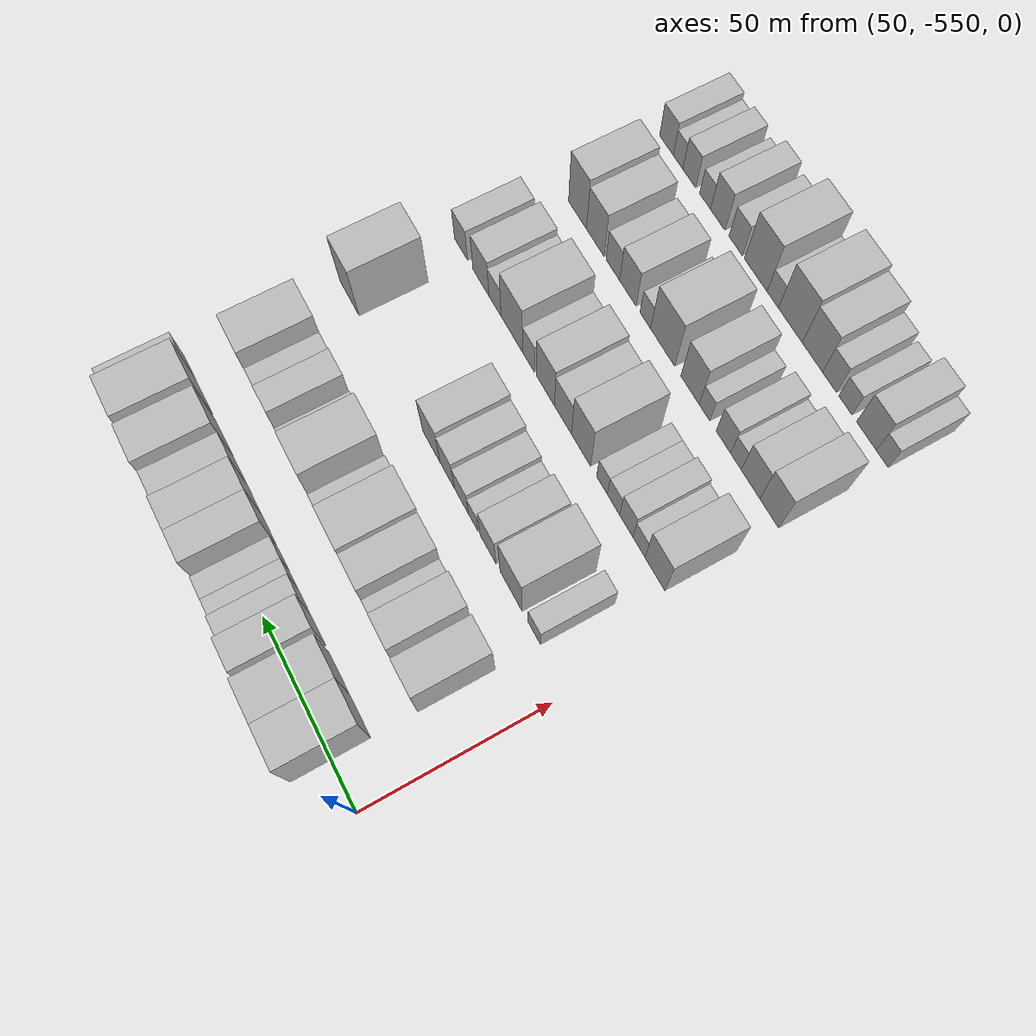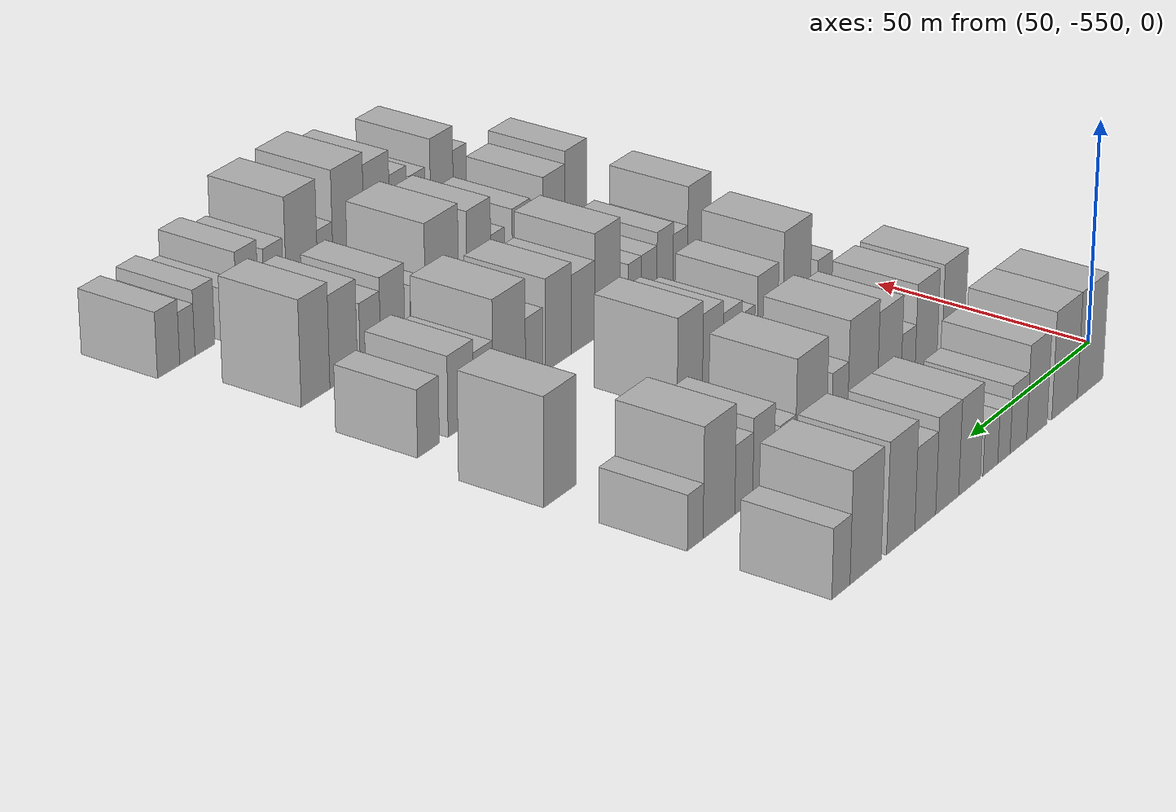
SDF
<sdf version="1.6">
 <world name="default">
  <model name="building_1">
   <static>1</static>
   <pose>50.0000 -531.4744 0 0.000000 0.000000 0.000000</pose>
   <link name="link">
    <pose>0 0 12.00 0 0 0</pose>
    <collision name="collision"><geometry><box><size>20.0000 11.0512 24.0000</size></box></geometry></collision>
    <visual name="visual">
     <cast_shadows>0</cast_shadows>
     <geometry><box><size>20.0000 11.0512 24.0000</size></box></geometry>
     <material>
      <script>
       <uri>model://HANNAS_wall/materials/scripts</uri>
       <uri>model://HANNAS_wall/materials/textures</uri>
       <name>vrc/HANNAS_wall</name>
      </script>
     </material>
    </visual>
   </link>
  </model>
  <model name="building_2">
   <static>1</static>
   <pose>50.0000 -520.5361 0 0.000000 0.000000 0.000000</pose>
   <link name="link">
    <pose>0 0 12.00 0 0 0</pose>
    <collision name="collision"><geometry><box><size>20.0000 10.8253 24.0000</size></box></geometry></collision>
    <visual name="visual">
     <cast_shadows>0</cast_shadows>
     <geometry><box><size>20.0000 10.8253 24.0000</size></box></geometry>
     <material>
      <script>
       <uri>model://HANNAS_wall/materials/scripts</uri>
       <uri>model://HANNAS_wall/materials/textures</uri>
       <name>vrc/HANNAS_wall</name>
      </script>
     </material>
    </visual>
   </link>
  </model>
  <model name="building_3">
   <static>1</static>
   <pose>50.0000 -508.8587 0 0.000000 0.000000 0.000000</pose>
   <link name="link">
    <pose>0 0 10.50 0 0 0</pose>
    <collision name="collision"><geometry><box><size>20.0000 8.5297 21.0000</size></box></geometry></collision>
    <visual name="visual">
     <cast_shadows>0</cast_shadows>
     <geometry><box><size>20.0000 8.5297 21.0000</size></box></geometry>
     <material>
      <script>
       <uri>model://HANNAS_wall/materials/scripts</uri>
       <uri>model://HANNAS_wall/materials/textures</uri>
       <name>vrc/HANNAS_wall</name>
      </script>
     </material>
    </visual>
   </link>
  </model>
  <model name="building_4">
   <static>1</static>
   <pose>50.0000 -501.1729 0 0.000000 0.000000 0.000000</pose>
   <link name="link">
    <pose>0 0 7.50 0 0 0</pose>
    <collision name="collision"><geometry><box><size>20.0000 6.8418 15.0000</size></box></geometry></collision>
    <visual name="visual">
     <cast_shadows>0</cast_shadows>
     <geometry><box><size>20.0000 6.8418 15.0000</size></box></geometry>
     <material>
      <script>
       <uri>model://HANNAS_wall/materials/scripts</uri>
       <uri>model://HANNAS_wall/materials/textures</uri>
       <name>vrc/HANNAS_wall</name>
      </script>
     </material>
    </visual>
   </link>
  </model>
  <model name="building_5">
   <static>1</static>
   <pose>50.0000 -495.2459 0 0.000000 0.000000 0.000000</pose>
   <link name="link">
    <pose>0 0 6.00 0 0 0</pose>
    <collision name="collision"><geometry><box><size>20.0000 5.0123 12.0000</size></box></geometry></collision>
    <visual name="visual">
     <cast_shadows>0</cast_shadows>
     <geometry><box><size>20.0000 5.0123 12.0000</size></box></geometry>
     <material>
      <script>
       <uri>model://HANNAS_wall/materials/scripts</uri>
       <uri>model://HANNAS_wall/materials/textures</uri>
       <name>vrc/HANNAS_wall</name>
      </script>
     </material>
    </visual>
   </link>
  </model>
  <model name="building_6">
   <static>1</static>
   <pose>50.0000 -489.7527 0 0.000000 0.000000 0.000000</pose>
   <link name="link">
    <pose>0 0 6.00 0 0 0</pose>
    <collision name="collision"><geometry><box><size>20.0000 5.9742 12.0000</size></box></geometry></collision>
    <visual name="visual">
     <cast_shadows>0</cast_shadows>
     <geometry><box><size>20.0000 5.9742 12.0000</size></box></geometry>
     <material>
      <script>
       <uri>model://HANNAS_wall/materials/scripts</uri>
       <uri>model://HANNAS_wall/materials/textures</uri>
       <name>vrc/HANNAS_wall</name>
      </script>
     </material>
    </visual>
   </link>
  </model>
  <model name="building_7">
   <static>1</static>
   <pose>50.0000 -481.4342 0 0.000000 0.000000 0.000000</pose>
   <link name="link">
    <pose>0 0 10.50 0 0 0</pose>
    <collision name="collision"><geometry><box><size>20.0000 8.6627 21.0000</size></box></geometry></collision>
    <visual name="visual">
     <cast_shadows>0</cast_shadows>
     <geometry><box><size>20.0000 8.6627 21.0000</size></box></geometry>
     <material>
      <script>
       <uri>model://HANNAS_wall/materials/scripts</uri>
       <uri>model://HANNAS_wall/materials/textures</uri>
       <name>vrc/HANNAS_wall</name>
      </script>
     </material>
    </visual>
   </link>
  </model>
  <model name="building_8">
   <static>1</static>
   <pose>50.0000 -472.6129 0 0.000000 0.000000 0.000000</pose>
   <link name="link">
    <pose>0 0 10.50 0 0 0</pose>
    <collision name="collision"><geometry><box><size>20.0000 8.9801 21.0000</size></box></geometry></collision>
    <visual name="visual">
     <cast_shadows>0</cast_shadows>
     <geometry><box><size>20.0000 8.9801 21.0000</size></box></geometry>
     <material>
      <script>
       <uri>model://HANNAS_wall/materials/scripts</uri>
       <uri>model://HANNAS_wall/materials/textures</uri>
       <name>vrc/HANNAS_wall</name>
      </script>
     </material>
    </visual>
   </link>
  </model>
  <model name="building_9">
   <static>1</static>
   <pose>50.0000 -464.0912 0 0.000000 0.000000 0.000000</pose>
   <link name="link">
    <pose>0 0 9.00 0 0 0</pose>
    <collision name="collision"><geometry><box><size>20.0000 8.0633 18.0000</size></box></geometry></collision>
    <visual name="visual">
     <cast_shadows>0</cast_shadows>
     <geometry><box><size>20.0000 8.0633 18.0000</size></box></geometry>
     <material>
      <script>
       <uri>model://HANNAS_wall/materials/scripts</uri>
       <uri>model://HANNAS_wall/materials/textures</uri>
       <name>vrc/HANNAS_wall</name>
      </script>
     </material>
    </visual>
   </link>
  </model>
  <model name="building_10">
   <static>1</static>
   <pose>50.0000 -454.7372 0 0.000000 0.000000 0.000000</pose>
   <link name="link">
    <pose>0 0 12.00 0 0 0</pose>
    <collision name="collision"><geometry><box><size>20.0000 10.6446 24.0000</size></box></geometry></collision>
    <visual name="visual">
     <cast_shadows>0</cast_shadows>
     <geometry><box><size>20.0000 10.6446 24.0000</size></box></geometry>
     <material>
      <script>
       <uri>model://HANNAS_wall/materials/scripts</uri>
       <uri>model://HANNAS_wall/materials/textures</uri>
       <name>vrc/HANNAS_wall</name>
      </script>
     </material>
    </visual>
   </link>
  </model>
  <model name="building_11">
   <static>1</static>
   <pose>50.0000 -441.6367 0 0.000000 0.000000 0.000000</pose>
   <link name="link">
    <pose>0 0 12.00 0 0 0</pose>
    <collision name="collision"><geometry><box><size>20.0000 11.5565 24.0000</size></box></geometry></collision>
    <visual name="visual">
     <cast_shadows>0</cast_shadows>
     <geometry><box><size>20.0000 11.5565 24.0000</size></box></geometry>
     <material>
      <script>
       <uri>model://HANNAS_wall/materials/scripts</uri>
       <uri>model://HANNAS_wall/materials/textures</uri>
       <name>vrc/HANNAS_wall</name>
      </script>
     </material>
    </visual>
   </link>
  </model>
  <model name="building_12">
   <static>1</static>
   <pose>50.0000 -432.5719 0 0.000000 0.000000 0.000000</pose>
   <link name="link">
    <pose>0 0 7.50 0 0 0</pose>
    <collision name="collision"><geometry><box><size>20.0000 6.5730 15.0000</size></box></geometry></collision>
    <visual name="visual">
     <cast_shadows>0</cast_shadows>
     <geometry><box><size>20.0000 6.5730 15.0000</size></box></geometry>
     <material>
      <script>
       <uri>model://HANNAS_wall/materials/scripts</uri>
       <uri>model://HANNAS_wall/materials/textures</uri>
       <name>vrc/HANNAS_wall</name>
      </script>
     </material>
    </visual>
   </link>
  </model>
  <model name="building_120">
   <static>1</static>
   <pose>82.0000 -532.1455 0 0.000000 0.000000 0.000000</pose>
   <link name="link">
    <pose>0 0 10.50 0 0 0</pose>
    <collision name="collision"><geometry><box><size>20.0000 9.7091 21.0000</size></box></geometry></collision>
    <visual name="visual">
     <cast_shadows>0</cast_shadows>
     <geometry><box><size>20.0000 9.7091 21.0000</size></box></geometry>
     <material>
      <script>
       <uri>model://HANNAS_wall/materials/scripts</uri>
       <uri>model://HANNAS_wall/materials/textures</uri>
       <name>vrc/HANNAS_wall</name>
      </script>
     </material>
    </visual>
   </link>
  </model>
  <model name="building_121">
   <static>1</static>
   <pose>82.0000 -520.7412 0 0.000000 0.000000 0.000000</pose>
   <link name="link">
    <pose>0 0 10.50 0 0 0</pose>
    <collision name="collision"><geometry><box><size>20.0000 9.0995 21.0000</size></box></geometry></collision>
    <visual name="visual">
     <cast_shadows>0</cast_shadows>
     <geometry><box><size>20.0000 9.0995 21.0000</size></box></geometry>
     <material>
      <script>
       <uri>model://HANNAS_wall/materials/scripts</uri>
       <uri>model://HANNAS_wall/materials/textures</uri>
       <name>vrc/HANNAS_wall</name>
      </script>
     </material>
    </visual>
   </link>
  </model>
  <model name="building_122">
   <static>1</static>
   <pose>82.0000 -513.3312 0 0.000000 0.000000 0.000000</pose>
   <link name="link">
    <pose>0 0 6.00 0 0 0</pose>
    <collision name="collision"><geometry><box><size>20.0000 5.7204 12.0000</size></box></geometry></collision>
    <visual name="visual">
     <cast_shadows>0</cast_shadows>
     <geometry><box><size>20.0000 5.7204 12.0000</size></box></geometry>
     <material>
      <script>
       <uri>model://HANNAS_wall/materials/scripts</uri>
       <uri>model://HANNAS_wall/materials/textures</uri>
       <name>vrc/HANNAS_wall</name>
      </script>
     </material>
    </visual>
   </link>
  </model>
  <model name="building_123">
   <static>1</static>
   <pose>82.0000 -505.6842 0 0.000000 0.000000 0.000000</pose>
   <link name="link">
    <pose>0 0 10.50 0 0 0</pose>
    <collision name="collision"><geometry><box><size>20.0000 9.5736 21.0000</size></box></geometry></collision>
    <visual name="visual">
     <cast_shadows>0</cast_shadows>
     <geometry><box><size>20.0000 9.5736 21.0000</size></box></geometry>
     <material>
      <script>
       <uri>model://HANNAS_wall/materials/scripts</uri>
       <uri>model://HANNAS_wall/materials/textures</uri>
       <name>vrc/HANNAS_wall</name>
      </script>
     </material>
    </visual>
   </link>
  </model>
  <model name="building_124">
   <static>1</static>
   <pose>82.0000 -495.0396 0 0.000000 0.000000 0.000000</pose>
   <link name="link">
    <pose>0 0 12.00 0 0 0</pose>
    <collision name="collision"><geometry><box><size>20.0000 11.7158 24.0000</size></box></geometry></collision>
    <visual name="visual">
     <cast_shadows>0</cast_shadows>
     <geometry><box><size>20.0000 11.7158 24.0000</size></box></geometry>
     <material>
      <script>
       <uri>model://HANNAS_wall/materials/scripts</uri>
       <uri>model://HANNAS_wall/materials/textures</uri>
       <name>vrc/HANNAS_wall</name>
      </script>
     </material>
    </visual>
   </link>
  </model>
  <model name="building_125">
   <static>1</static>
   <pose>82.0000 -486.0764 0 0.000000 0.000000 0.000000</pose>
   <link name="link">
    <pose>0 0 7.50 0 0 0</pose>
    <collision name="collision"><geometry><box><size>20.0000 6.2106 15.0000</size></box></geometry></collision>
    <visual name="visual">
     <cast_shadows>0</cast_shadows>
     <geometry><box><size>20.0000 6.2106 15.0000</size></box></geometry>
     <material>
      <script>
       <uri>model://HANNAS_wall/materials/scripts</uri>
       <uri>model://HANNAS_wall/materials/textures</uri>
       <name>vrc/HANNAS_wall</name>
      </script>
     </material>
    </visual>
   </link>
  </model>
  <model name="building_126">
   <static>1</static>
   <pose>82.0000 -475.0550 0 0.000000 0.000000 0.000000</pose>
   <link name="link">
    <pose>0 0 12.00 0 0 0</pose>
    <collision name="collision"><geometry><box><size>20.0000 11.8322 24.0000</size></box></geometry></collision>
    <visual name="visual">
     <cast_shadows>0</cast_shadows>
     <geometry><box><size>20.0000 11.8322 24.0000</size></box></geometry>
     <material>
      <script>
       <uri>model://HANNAS_wall/materials/scripts</uri>
       <uri>model://HANNAS_wall/materials/textures</uri>
       <name>vrc/HANNAS_wall</name>
      </script>
     </material>
    </visual>
   </link>
  </model>
  <model name="building_127">
   <static>1</static>
   <pose>82.0000 -466.1639 0 0.000000 0.000000 0.000000</pose>
   <link name="link">
    <pose>0 0 6.00 0 0 0</pose>
    <collision name="collision"><geometry><box><size>20.0000 5.9500 12.0000</size></box></geometry></collision>
    <visual name="visual">
     <cast_shadows>0</cast_shadows>
     <geometry><box><size>20.0000 5.9500 12.0000</size></box></geometry>
     <material>
      <script>
       <uri>model://HANNAS_wall/materials/scripts</uri>
       <uri>model://HANNAS_wall/materials/textures</uri>
       <name>vrc/HANNAS_wall</name>
      </script>
     </material>
    </visual>
   </link>
  </model>
  <model name="building_128">
   <static>1</static>
   <pose>82.0000 -457.2753 0 0.000000 0.000000 0.000000</pose>
   <link name="link">
    <pose>0 0 9.00 0 0 0</pose>
    <collision name="collision"><geometry><box><size>20.0000 7.8272 18.0000</size></box></geometry></collision>
    <visual name="visual">
     <cast_shadows>0</cast_shadows>
     <geometry><box><size>20.0000 7.8272 18.0000</size></box></geometry>
     <material>
      <script>
       <uri>model://HANNAS_wall/materials/scripts</uri>
       <uri>model://HANNAS_wall/materials/textures</uri>
       <name>vrc/HANNAS_wall</name>
      </script>
     </material>
    </visual>
   </link>
  </model>
  <model name="building_129">
   <static>1</static>
   <pose>82.0000 -450.1195 0 0.000000 0.000000 0.000000</pose>
   <link name="link">
    <pose>0 0 7.50 0 0 0</pose>
    <collision name="collision"><geometry><box><size>20.0000 6.4844 15.0000</size></box></geometry></collision>
    <visual name="visual">
     <cast_shadows>0</cast_shadows>
     <geometry><box><size>20.0000 6.4844 15.0000</size></box></geometry>
     <material>
      <script>
       <uri>model://HANNAS_wall/materials/scripts</uri>
       <uri>model://HANNAS_wall/materials/textures</uri>
       <name>vrc/HANNAS_wall</name>
      </script>
     </material>
    </visual>
   </link>
  </model>
  <model name="building_130">
   <static>1</static>
   <pose>82.0000 -441.1937 0 0.000000 0.000000 0.000000</pose>
   <link name="link">
    <pose>0 0 12.00 0 0 0</pose>
    <collision name="collision"><geometry><box><size>20.0000 11.3672 24.0000</size></box></geometry></collision>
    <visual name="visual">
     <cast_shadows>0</cast_shadows>
     <geometry><box><size>20.0000 11.3672 24.0000</size></box></geometry>
     <material>
      <script>
       <uri>model://HANNAS_wall/materials/scripts</uri>
       <uri>model://HANNAS_wall/materials/textures</uri>
       <name>vrc/HANNAS_wall</name>
      </script>
     </material>
    </visual>
   </link>
  </model>
  <model name="building_131">
   <static>1</static>
   <pose>82.0000 -432.7361 0 0.000000 0.000000 0.000000</pose>
   <link name="link">
    <pose>0 0 6.00 0 0 0</pose>
    <collision name="collision"><geometry><box><size>20.0000 5.5478 12.0000</size></box></geometry></collision>
    <visual name="visual">
     <cast_shadows>0</cast_shadows>
     <geometry><box><size>20.0000 5.5478 12.0000</size></box></geometry>
     <material>
      <script>
       <uri>model://HANNAS_wall/materials/scripts</uri>
       <uri>model://HANNAS_wall/materials/textures</uri>
       <name>vrc/HANNAS_wall</name>
      </script>
     </material>
    </visual>
   </link>
  </model>
  <model name="building_239">
   <static>1</static>
   <pose>114.0000 -534.0229 0 0.000000 0.000000 0.000000</pose>
   <link name="link">
    <pose>0 0 6.00 0 0 0</pose>
    <collision name="collision"><geometry><box><size>20.0000 5.9543 12.0000</size></box></geometry></collision>
    <visual name="visual">
     <cast_shadows>0</cast_shadows>
     <geometry><box><size>20.0000 5.9543 12.0000</size></box></geometry>
     <material>
      <script>
       <uri>model://HANNAS_wall/materials/scripts</uri>
       <uri>model://HANNAS_wall/materials/textures</uri>
       <name>vrc/HANNAS_wall</name>
      </script>
     </material>
    </visual>
   </link>
  </model>
  <model name="building_240">
   <static>1</static>
   <pose>114.0000 -522.5416 0 0.000000 0.000000 0.000000</pose>
   <link name="link">
    <pose>0 0 12.00 0 0 0</pose>
    <collision name="collision"><geometry><box><size>20.0000 11.0083 24.0000</size></box></geometry></collision>
    <visual name="visual">
     <cast_shadows>0</cast_shadows>
     <geometry><box><size>20.0000 11.0083 24.0000</size></box></geometry>
     <material>
      <script>
       <uri>model://HANNAS_wall/materials/scripts</uri>
       <uri>model://HANNAS_wall/materials/textures</uri>
       <name>vrc/HANNAS_wall</name>
      </script>
     </material>
    </visual>
   </link>
  </model>
  <model name="building_241">
   <static>1</static>
   <pose>114.0000 -510.9692 0 0.000000 0.000000 0.000000</pose>
   <link name="link">
    <pose>0 0 9.00 0 0 0</pose>
    <collision name="collision"><geometry><box><size>20.0000 8.1365 18.0000</size></box></geometry></collision>
    <visual name="visual">
     <cast_shadows>0</cast_shadows>
     <geometry><box><size>20.0000 8.1365 18.0000</size></box></geometry>
     <material>
      <script>
       <uri>model://HANNAS_wall/materials/scripts</uri>
       <uri>model://HANNAS_wall/materials/textures</uri>
       <name>vrc/HANNAS_wall</name>
      </script>
     </material>
    </visual>
   </link>
  </model>
  <model name="building_242">
   <static>1</static>
   <pose>114.0000 -503.4603 0 0.000000 0.000000 0.000000</pose>
   <link name="link">
    <pose>0 0 6.00 0 0 0</pose>
    <collision name="collision"><geometry><box><size>20.0000 4.8813 12.0000</size></box></geometry></collision>
    <visual name="visual">
     <cast_shadows>0</cast_shadows>
     <geometry><box><size>20.0000 4.8813 12.0000</size></box></geometry>
     <material>
      <script>
       <uri>model://HANNAS_wall/materials/scripts</uri>
       <uri>model://HANNAS_wall/materials/textures</uri>
       <name>vrc/HANNAS_wall</name>
      </script>
     </material>
    </visual>
   </link>
  </model>
  <model name="building_243">
   <static>1</static>
   <pose>114.0000 -497.3186 0 0.000000 0.000000 0.000000</pose>
   <link name="link">
    <pose>0 0 7.50 0 0 0</pose>
    <collision name="collision"><geometry><box><size>20.0000 7.4020 15.0000</size></box></geometry></collision>
    <visual name="visual">
     <cast_shadows>0</cast_shadows>
     <geometry><box><size>20.0000 7.4020 15.0000</size></box></geometry>
     <material>
      <script>
       <uri>model://HANNAS_wall/materials/scripts</uri>
       <uri>model://HANNAS_wall/materials/textures</uri>
       <name>vrc/HANNAS_wall</name>
      </script>
     </material>
    </visual>
   </link>
  </model>
  <model name="building_244">
   <static>1</static>
   <pose>114.0000 -489.8077 0 0.000000 0.000000 0.000000</pose>
   <link name="link">
    <pose>0 0 9.00 0 0 0</pose>
    <collision name="collision"><geometry><box><size>20.0000 7.6198 18.0000</size></box></geometry></collision>
    <visual name="visual">
     <cast_shadows>0</cast_shadows>
     <geometry><box><size>20.0000 7.6198 18.0000</size></box></geometry>
     <material>
      <script>
       <uri>model://HANNAS_wall/materials/scripts</uri>
       <uri>model://HANNAS_wall/materials/textures</uri>
       <name>vrc/HANNAS_wall</name>
      </script>
     </material>
    </visual>
   </link>
  </model>
  <model name="building_245">
   <static>1</static>
   <pose>114.0000 -481.2629 0 0.000000 0.000000 0.000000</pose>
   <link name="link">
    <pose>0 0 10.50 0 0 0</pose>
    <collision name="collision"><geometry><box><size>20.0000 9.4698 21.0000</size></box></geometry></collision>
    <visual name="visual">
     <cast_shadows>0</cast_shadows>
     <geometry><box><size>20.0000 9.4698 21.0000</size></box></geometry>
     <material>
      <script>
       <uri>model://HANNAS_wall/materials/scripts</uri>
       <uri>model://HANNAS_wall/materials/textures</uri>
       <name>vrc/HANNAS_wall</name>
      </script>
     </material>
    </visual>
   </link>
  </model>
  <model name="building_246">
   <static>1</static>
   <pose>114.0000 -434.6473 0 0.000000 0.000000 0.000000</pose>
   <link name="link">
    <pose>0 0 12.00 0 0 0</pose>
    <collision name="collision"><geometry><box><size>20.0000 11.2539 24.0000</size></box></geometry></collision>
    <visual name="visual">
     <cast_shadows>0</cast_shadows>
     <geometry><box><size>20.0000 11.2539 24.0000</size></box></geometry>
     <material>
      <script>
       <uri>model://HANNAS_wall/materials/scripts</uri>
       <uri>model://HANNAS_wall/materials/textures</uri>
       <name>vrc/HANNAS_wall</name>
      </script>
     </material>
    </visual>
   </link>
  </model>
  <model name="building_354">
   <static>1</static>
   <pose>146.0000 -535.3751 0 0.000000 0.000000 0.000000</pose>
   <link name="link">
    <pose>0 0 10.50 0 0 0</pose>
    <collision name="collision"><geometry><box><size>20.0000 9.2498 21.0000</size></box></geometry></collision>
    <visual name="visual">
     <cast_shadows>0</cast_shadows>
     <geometry><box><size>20.0000 9.2498 21.0000</size></box></geometry>
     <material>
      <script>
       <uri>model://HANNAS_wall/materials/scripts</uri>
       <uri>model://HANNAS_wall/materials/textures</uri>
       <name>vrc/HANNAS_wall</name>
      </script>
     </material>
    </visual>
   </link>
  </model>
  <model name="building_355">
   <static>1</static>
   <pose>146.0000 -527.8973 0 0.000000 0.000000 0.000000</pose>
   <link name="link">
    <pose>0 0 6.00 0 0 0</pose>
    <collision name="collision"><geometry><box><size>20.0000 5.7058 12.0000</size></box></geometry></collision>
    <visual name="visual">
     <cast_shadows>0</cast_shadows>
     <geometry><box><size>20.0000 5.7058 12.0000</size></box></geometry>
     <material>
      <script>
       <uri>model://HANNAS_wall/materials/scripts</uri>
       <uri>model://HANNAS_wall/materials/textures</uri>
       <name>vrc/HANNAS_wall</name>
      </script>
     </material>
    </visual>
   </link>
  </model>
  <model name="building_356">
   <static>1</static>
   <pose>146.0000 -521.8659 0 0.000000 0.000000 0.000000</pose>
   <link name="link">
    <pose>0 0 7.50 0 0 0</pose>
    <collision name="collision"><geometry><box><size>20.0000 6.3569 15.0000</size></box></geometry></collision>
    <visual name="visual">
     <cast_shadows>0</cast_shadows>
     <geometry><box><size>20.0000 6.3569 15.0000</size></box></geometry>
     <material>
      <script>
       <uri>model://HANNAS_wall/materials/scripts</uri>
       <uri>model://HANNAS_wall/materials/textures</uri>
       <name>vrc/HANNAS_wall</name>
      </script>
     </material>
    </visual>
   </link>
  </model>
  <model name="building_357">
   <static>1</static>
   <pose>146.0000 -515.6915 0 0.000000 0.000000 0.000000</pose>
   <link name="link">
    <pose>0 0 6.00 0 0 0</pose>
    <collision name="collision"><geometry><box><size>20.0000 5.9920 12.0000</size></box></geometry></collision>
    <visual name="visual">
     <cast_shadows>0</cast_shadows>
     <geometry><box><size>20.0000 5.9920 12.0000</size></box></geometry>
     <material>
      <script>
       <uri>model://HANNAS_wall/materials/scripts</uri>
       <uri>model://HANNAS_wall/materials/textures</uri>
       <name>vrc/HANNAS_wall</name>
      </script>
     </material>
    </visual>
   </link>
  </model>
  <model name="building_358">
   <static>1</static>
   <pose>146.0000 -510.1090 0 0.000000 0.000000 0.000000</pose>
   <link name="link">
    <pose>0 0 6.00 0 0 0</pose>
    <collision name="collision"><geometry><box><size>20.0000 5.1729 12.0000</size></box></geometry></collision>
    <visual name="visual">
     <cast_shadows>0</cast_shadows>
     <geometry><box><size>20.0000 5.1729 12.0000</size></box></geometry>
     <material>
      <script>
       <uri>model://HANNAS_wall/materials/scripts</uri>
       <uri>model://HANNAS_wall/materials/textures</uri>
       <name>vrc/HANNAS_wall</name>
      </script>
     </material>
    </visual>
   </link>
  </model>
  <model name="building_359">
   <static>1</static>
   <pose>146.0000 -499.7069 0 0.000000 0.000000 0.000000</pose>
   <link name="link">
    <pose>0 0 12.00 0 0 0</pose>
    <collision name="collision"><geometry><box><size>20.0000 9.6314 24.0000</size></box></geometry></collision>
    <visual name="visual">
     <cast_shadows>0</cast_shadows>
     <geometry><box><size>20.0000 9.6314 24.0000</size></box></geometry>
     <material>
      <script>
       <uri>model://HANNAS_wall/materials/scripts</uri>
       <uri>model://HANNAS_wall/materials/textures</uri>
       <name>vrc/HANNAS_wall</name>
      </script>
     </material>
    </visual>
   </link>
  </model>
  <model name="building_360">
   <static>1</static>
   <pose>146.0000 -490.5753 0 0.000000 0.000000 0.000000</pose>
   <link name="link">
    <pose>0 0 9.00 0 0 0</pose>
    <collision name="collision"><geometry><box><size>20.0000 8.6318 18.0000</size></box></geometry></collision>
    <visual name="visual">
     <cast_shadows>0</cast_shadows>
     <geometry><box><size>20.0000 8.6318 18.0000</size></box></geometry>
     <material>
      <script>
       <uri>model://HANNAS_wall/materials/scripts</uri>
       <uri>model://HANNAS_wall/materials/textures</uri>
       <name>vrc/HANNAS_wall</name>
      </script>
     </material>
    </visual>
   </link>
  </model>
  <model name="building_361">
   <static>1</static>
   <pose>146.0000 -481.5335 0 0.000000 0.000000 0.000000</pose>
   <link name="link">
    <pose>0 0 10.50 0 0 0</pose>
    <collision name="collision"><geometry><box><size>20.0000 9.4519 21.0000</size></box></geometry></collision>
    <visual name="visual">
     <cast_shadows>0</cast_shadows>
     <geometry><box><size>20.0000 9.4519 21.0000</size></box></geometry>
     <material>
      <script>
       <uri>model://HANNAS_wall/materials/scripts</uri>
       <uri>model://HANNAS_wall/materials/textures</uri>
       <name>vrc/HANNAS_wall</name>
      </script>
     </material>
    </visual>
   </link>
  </model>
  <model name="building_362">
   <static>1</static>
   <pose>146.0000 -472.7084 0 0.000000 0.000000 0.000000</pose>
   <link name="link">
    <pose>0 0 7.50 0 0 0</pose>
    <collision name="collision"><geometry><box><size>20.0000 6.1983 15.0000</size></box></geometry></collision>
    <visual name="visual">
     <cast_shadows>0</cast_shadows>
     <geometry><box><size>20.0000 6.1983 15.0000</size></box></geometry>
     <material>
      <script>
       <uri>model://HANNAS_wall/materials/scripts</uri>
       <uri>model://HANNAS_wall/materials/textures</uri>
       <name>vrc/HANNAS_wall</name>
      </script>
     </material>
    </visual>
   </link>
  </model>
  <model name="building_363">
   <static>1</static>
   <pose>146.0000 -463.8252 0 0.000000 0.000000 0.000000</pose>
   <link name="link">
    <pose>0 0 12.00 0 0 0</pose>
    <collision name="collision"><geometry><box><size>20.0000 11.5680 24.0000</size></box></geometry></collision>
    <visual name="visual">
     <cast_shadows>0</cast_shadows>
     <geometry><box><size>20.0000 11.5680 24.0000</size></box></geometry>
     <material>
      <script>
       <uri>model://HANNAS_wall/materials/scripts</uri>
       <uri>model://HANNAS_wall/materials/textures</uri>
       <name>vrc/HANNAS_wall</name>
      </script>
     </material>
    </visual>
   </link>
  </model>
  <model name="building_364">
   <static>1</static>
   <pose>146.0000 -454.6991 0 0.000000 0.000000 0.000000</pose>
   <link name="link">
    <pose>0 0 7.50 0 0 0</pose>
    <collision name="collision"><geometry><box><size>20.0000 6.6843 15.0000</size></box></geometry></collision>
    <visual name="visual">
     <cast_shadows>0</cast_shadows>
     <geometry><box><size>20.0000 6.6843 15.0000</size></box></geometry>
     <material>
      <script>
       <uri>model://HANNAS_wall/materials/scripts</uri>
       <uri>model://HANNAS_wall/materials/textures</uri>
       <name>vrc/HANNAS_wall</name>
      </script>
     </material>
    </visual>
   </link>
  </model>
  <model name="building_365">
   <static>1</static>
   <pose>146.0000 -446.9074 0 0.000000 0.000000 0.000000</pose>
   <link name="link">
    <pose>0 0 9.00 0 0 0</pose>
    <collision name="collision"><geometry><box><size>20.0000 8.8991 18.0000</size></box></geometry></collision>
    <visual name="visual">
     <cast_shadows>0</cast_shadows>
     <geometry><box><size>20.0000 8.8991 18.0000</size></box></geometry>
     <material>
      <script>
       <uri>model://HANNAS_wall/materials/scripts</uri>
       <uri>model://HANNAS_wall/materials/textures</uri>
       <name>vrc/HANNAS_wall</name>
      </script>
     </material>
    </visual>
   </link>
  </model>
  <model name="building_366">
   <static>1</static>
   <pose>146.0000 -435.7713 0 0.000000 0.000000 0.000000</pose>
   <link name="link">
    <pose>0 0 7.50 0 0 0</pose>
    <collision name="collision"><geometry><box><size>20.0000 7.3730 15.0000</size></box></geometry></collision>
    <visual name="visual">
     <cast_shadows>0</cast_shadows>
     <geometry><box><size>20.0000 7.3730 15.0000</size></box></geometry>
     <material>
      <script>
       <uri>model://HANNAS_wall/materials/scripts</uri>
       <uri>model://HANNAS_wall/materials/textures</uri>
       <name>vrc/HANNAS_wall</name>
      </script>
     </material>
    </visual>
   </link>
  </model>
  <model name="building_474">
   <static>1</static>
   <pose>178.0000 -535.7798 0 0.000000 0.000000 0.000000</pose>
   <link name="link">
    <pose>0 0 10.50 0 0 0</pose>
    <collision name="collision"><geometry><box><size>20.0000 8.4403 21.0000</size></box></geometry></collision>
    <visual name="visual">
     <cast_shadows>0</cast_shadows>
     <geometry><box><size>20.0000 8.4403 21.0000</size></box></geometry>
     <material>
      <script>
       <uri>model://HANNAS_wall/materials/scripts</uri>
       <uri>model://HANNAS_wall/materials/textures</uri>
       <name>vrc/HANNAS_wall</name>
      </script>
     </material>
    </visual>
   </link>
  </model>
  <model name="building_475">
   <static>1</static>
   <pose>178.0000 -527.3186 0 0.000000 0.000000 0.000000</pose>
   <link name="link">
    <pose>0 0 9.00 0 0 0</pose>
    <collision name="collision"><geometry><box><size>20.0000 8.4820 18.0000</size></box></geometry></collision>
    <visual name="visual">
     <cast_shadows>0</cast_shadows>
     <geometry><box><size>20.0000 8.4820 18.0000</size></box></geometry>
     <material>
      <script>
       <uri>model://HANNAS_wall/materials/scripts</uri>
       <uri>model://HANNAS_wall/materials/textures</uri>
       <name>vrc/HANNAS_wall</name>
      </script>
     </material>
    </visual>
   </link>
  </model>
  <model name="building_476">
   <static>1</static>
   <pose>178.0000 -520.6472 0 0.000000 0.000000 0.000000</pose>
   <link name="link">
    <pose>0 0 6.00 0 0 0</pose>
    <collision name="collision"><geometry><box><size>20.0000 4.8608 12.0000</size></box></geometry></collision>
    <visual name="visual">
     <cast_shadows>0</cast_shadows>
     <geometry><box><size>20.0000 4.8608 12.0000</size></box></geometry>
     <material>
      <script>
       <uri>model://HANNAS_wall/materials/scripts</uri>
       <uri>model://HANNAS_wall/materials/textures</uri>
       <name>vrc/HANNAS_wall</name>
      </script>
     </material>
    </visual>
   </link>
  </model>
  <model name="building_477">
   <static>1</static>
   <pose>178.0000 -514.8377 0 0.000000 0.000000 0.000000</pose>
   <link name="link">
    <pose>0 0 7.50 0 0 0</pose>
    <collision name="collision"><geometry><box><size>20.0000 6.7584 15.0000</size></box></geometry></collision>
    <visual name="visual">
     <cast_shadows>0</cast_shadows>
     <geometry><box><size>20.0000 6.7584 15.0000</size></box></geometry>
     <material>
      <script>
       <uri>model://HANNAS_wall/materials/scripts</uri>
       <uri>model://HANNAS_wall/materials/textures</uri>
       <name>vrc/HANNAS_wall</name>
      </script>
     </material>
    </visual>
   </link>
  </model>
  <model name="building_478">
   <static>1</static>
   <pose>178.0000 -505.9227 0 0.000000 0.000000 0.000000</pose>
   <link name="link">
    <pose>0 0 6.00 0 0 0</pose>
    <collision name="collision"><geometry><box><size>20.0000 5.0716 12.0000</size></box></geometry></collision>
    <visual name="visual">
     <cast_shadows>0</cast_shadows>
     <geometry><box><size>20.0000 5.0716 12.0000</size></box></geometry>
     <material>
      <script>
       <uri>model://HANNAS_wall/materials/scripts</uri>
       <uri>model://HANNAS_wall/materials/textures</uri>
       <name>vrc/HANNAS_wall</name>
      </script>
     </material>
    </visual>
   </link>
  </model>
  <model name="building_479">
   <static>1</static>
   <pose>178.0000 -498.9831 0 0.000000 0.000000 0.000000</pose>
   <link name="link">
    <pose>0 0 10.50 0 0 0</pose>
    <collision name="collision"><geometry><box><size>20.0000 8.8074 21.0000</size></box></geometry></collision>
    <visual name="visual">
     <cast_shadows>0</cast_shadows>
     <geometry><box><size>20.0000 8.8074 21.0000</size></box></geometry>
     <material>
      <script>
       <uri>model://HANNAS_wall/materials/scripts</uri>
       <uri>model://HANNAS_wall/materials/textures</uri>
       <name>vrc/HANNAS_wall</name>
      </script>
     </material>
    </visual>
   </link>
  </model>
  <model name="building_480">
   <static>1</static>
   <pose>178.0000 -485.5901 0 0.000000 0.000000 0.000000</pose>
   <link name="link">
    <pose>0 0 12.00 0 0 0</pose>
    <collision name="collision"><geometry><box><size>20.0000 11.9788 24.0000</size></box></geometry></collision>
    <visual name="visual">
     <cast_shadows>0</cast_shadows>
     <geometry><box><size>20.0000 11.9788 24.0000</size></box></geometry>
     <material>
      <script>
       <uri>model://HANNAS_wall/materials/scripts</uri>
       <uri>model://HANNAS_wall/materials/textures</uri>
       <name>vrc/HANNAS_wall</name>
      </script>
     </material>
    </visual>
   </link>
  </model>
  <model name="building_481">
   <static>1</static>
   <pose>178.0000 -476.9159 0 0.000000 0.000000 0.000000</pose>
   <link name="link">
    <pose>0 0 6.00 0 0 0</pose>
    <collision name="collision"><geometry><box><size>20.0000 5.3695 12.0000</size></box></geometry></collision>
    <visual name="visual">
     <cast_shadows>0</cast_shadows>
     <geometry><box><size>20.0000 5.3695 12.0000</size></box></geometry>
     <material>
      <script>
       <uri>model://HANNAS_wall/materials/scripts</uri>
       <uri>model://HANNAS_wall/materials/textures</uri>
       <name>vrc/HANNAS_wall</name>
      </script>
     </material>
    </visual>
   </link>
  </model>
  <model name="building_482">
   <static>1</static>
   <pose>178.0000 -467.9856 0 0.000000 0.000000 0.000000</pose>
   <link name="link">
    <pose>0 0 9.00 0 0 0</pose>
    <collision name="collision"><geometry><box><size>20.0000 8.4911 18.0000</size></box></geometry></collision>
    <visual name="visual">
     <cast_shadows>0</cast_shadows>
     <geometry><box><size>20.0000 8.4911 18.0000</size></box></geometry>
     <material>
      <script>
       <uri>model://HANNAS_wall/materials/scripts</uri>
       <uri>model://HANNAS_wall/materials/textures</uri>
       <name>vrc/HANNAS_wall</name>
      </script>
     </material>
    </visual>
   </link>
  </model>
  <model name="building_483">
   <static>1</static>
   <pose>178.0000 -460.2100 0 0.000000 0.000000 0.000000</pose>
   <link name="link">
    <pose>0 0 7.50 0 0 0</pose>
    <collision name="collision"><geometry><box><size>20.0000 7.0601 15.0000</size></box></geometry></collision>
    <visual name="visual">
     <cast_shadows>0</cast_shadows>
     <geometry><box><size>20.0000 7.0601 15.0000</size></box></geometry>
     <material>
      <script>
       <uri>model://HANNAS_wall/materials/scripts</uri>
       <uri>model://HANNAS_wall/materials/textures</uri>
       <name>vrc/HANNAS_wall</name>
      </script>
     </material>
    </visual>
   </link>
  </model>
  <model name="building_484">
   <static>1</static>
   <pose>178.0000 -450.9936 0 0.000000 0.000000 0.000000</pose>
   <link name="link">
    <pose>0 0 10.50 0 0 0</pose>
    <collision name="collision"><geometry><box><size>20.0000 9.3725 21.0000</size></box></geometry></collision>
    <visual name="visual">
     <cast_shadows>0</cast_shadows>
     <geometry><box><size>20.0000 9.3725 21.0000</size></box></geometry>
     <material>
      <script>
       <uri>model://HANNAS_wall/materials/scripts</uri>
       <uri>model://HANNAS_wall/materials/textures</uri>
       <name>vrc/HANNAS_wall</name>
      </script>
     </material>
    </visual>
   </link>
  </model>
  <model name="building_485">
   <static>1</static>
   <pose>178.0000 -441.4905 0 0.000000 0.000000 0.000000</pose>
   <link name="link">
    <pose>0 0 12.00 0 0 0</pose>
    <collision name="collision"><geometry><box><size>20.0000 9.6338 24.0000</size></box></geometry></collision>
    <visual name="visual">
     <cast_shadows>0</cast_shadows>
     <geometry><box><size>20.0000 9.6338 24.0000</size></box></geometry>
     <material>
      <script>
       <uri>model://HANNAS_wall/materials/scripts</uri>
       <uri>model://HANNAS_wall/materials/textures</uri>
       <name>vrc/HANNAS_wall</name>
      </script>
     </material>
    </visual>
   </link>
  </model>
  <model name="building_586">
   <static>1</static>
   <pose>210.0000 -537.4159 0 0.000000 0.000000 0.000000</pose>
   <link name="link">
    <pose>0 0 6.00 0 0 0</pose>
    <collision name="collision"><geometry><box><size>20.0000 5.1681 12.0000</size></box></geometry></collision>
    <visual name="visual">
     <cast_shadows>0</cast_shadows>
     <geometry><box><size>20.0000 5.1681 12.0000</size></box></geometry>
     <material>
      <script>
       <uri>model://HANNAS_wall/materials/scripts</uri>
       <uri>model://HANNAS_wall/materials/textures</uri>
       <name>vrc/HANNAS_wall</name>
      </script>
     </material>
    </visual>
   </link>
  </model>
  <model name="building_587">
   <static>1</static>
   <pose>210.0000 -530.5298 0 0.000000 0.000000 0.000000</pose>
   <link name="link">
    <pose>0 0 9.00 0 0 0</pose>
    <collision name="collision"><geometry><box><size>20.0000 8.6041 18.0000</size></box></geometry></collision>
    <visual name="visual">
     <cast_shadows>0</cast_shadows>
     <geometry><box><size>20.0000 8.6041 18.0000</size></box></geometry>
     <material>
      <script>
       <uri>model://HANNAS_wall/materials/scripts</uri>
       <uri>model://HANNAS_wall/materials/textures</uri>
       <name>vrc/HANNAS_wall</name>
      </script>
     </material>
    </visual>
   </link>
  </model>
  <model name="building_588">
   <static>1</static>
   <pose>210.0000 -521.2729 0 0.000000 0.000000 0.000000</pose>
   <link name="link">
    <pose>0 0 6.00 0 0 0</pose>
    <collision name="collision"><geometry><box><size>20.0000 5.9098 12.0000</size></box></geometry></collision>
    <visual name="visual">
     <cast_shadows>0</cast_shadows>
     <geometry><box><size>20.0000 5.9098 12.0000</size></box></geometry>
     <material>
      <script>
       <uri>model://HANNAS_wall/materials/scripts</uri>
       <uri>model://HANNAS_wall/materials/textures</uri>
       <name>vrc/HANNAS_wall</name>
      </script>
     </material>
    </visual>
   </link>
  </model>
  <model name="building_589">
   <static>1</static>
   <pose>210.0000 -514.1516 0 0.000000 0.000000 0.000000</pose>
   <link name="link">
    <pose>0 0 7.50 0 0 0</pose>
    <collision name="collision"><geometry><box><size>20.0000 6.3329 15.0000</size></box></geometry></collision>
    <visual name="visual">
     <cast_shadows>0</cast_shadows>
     <geometry><box><size>20.0000 6.3329 15.0000</size></box></geometry>
     <material>
      <script>
       <uri>model://HANNAS_wall/materials/scripts</uri>
       <uri>model://HANNAS_wall/materials/textures</uri>
       <name>vrc/HANNAS_wall</name>
      </script>
     </material>
    </visual>
   </link>
  </model>
  <model name="building_590">
   <static>1</static>
   <pose>210.0000 -506.3035 0 0.000000 0.000000 0.000000</pose>
   <link name="link">
    <pose>0 0 10.50 0 0 0</pose>
    <collision name="collision"><geometry><box><size>20.0000 9.3633 21.0000</size></box></geometry></collision>
    <visual name="visual">
     <cast_shadows>0</cast_shadows>
     <geometry><box><size>20.0000 9.3633 21.0000</size></box></geometry>
     <material>
      <script>
       <uri>model://HANNAS_wall/materials/scripts</uri>
       <uri>model://HANNAS_wall/materials/textures</uri>
       <name>vrc/HANNAS_wall</name>
      </script>
     </material>
    </visual>
   </link>
  </model>
  <model name="building_591">
   <static>1</static>
   <pose>210.0000 -496.0115 0 0.000000 0.000000 0.000000</pose>
   <link name="link">
    <pose>0 0 12.00 0 0 0</pose>
    <collision name="collision"><geometry><box><size>20.0000 11.2206 24.0000</size></box></geometry></collision>
    <visual name="visual">
     <cast_shadows>0</cast_shadows>
     <geometry><box><size>20.0000 11.2206 24.0000</size></box></geometry>
     <material>
      <script>
       <uri>model://HANNAS_wall/materials/scripts</uri>
       <uri>model://HANNAS_wall/materials/textures</uri>
       <name>vrc/HANNAS_wall</name>
      </script>
     </material>
    </visual>
   </link>
  </model>
  <model name="building_592">
   <static>1</static>
   <pose>210.0000 -487.6726 0 0.000000 0.000000 0.000000</pose>
   <link name="link">
    <pose>0 0 6.00 0 0 0</pose>
    <collision name="collision"><geometry><box><size>20.0000 5.4572 12.0000</size></box></geometry></collision>
    <visual name="visual">
     <cast_shadows>0</cast_shadows>
     <geometry><box><size>20.0000 5.4572 12.0000</size></box></geometry>
     <material>
      <script>
       <uri>model://HANNAS_wall/materials/scripts</uri>
       <uri>model://HANNAS_wall/materials/textures</uri>
       <name>vrc/HANNAS_wall</name>
      </script>
     </material>
    </visual>
   </link>
  </model>
  <model name="building_593">
   <static>1</static>
   <pose>210.0000 -479.4793 0 0.000000 0.000000 0.000000</pose>
   <link name="link">
    <pose>0 0 12.00 0 0 0</pose>
    <collision name="collision"><geometry><box><size>20.0000 10.9293 24.0000</size></box></geometry></collision>
    <visual name="visual">
     <cast_shadows>0</cast_shadows>
     <geometry><box><size>20.0000 10.9293 24.0000</size></box></geometry>
     <material>
      <script>
       <uri>model://HANNAS_wall/materials/scripts</uri>
       <uri>model://HANNAS_wall/materials/textures</uri>
       <name>vrc/HANNAS_wall</name>
      </script>
     </material>
    </visual>
   </link>
  </model>
  <model name="building_594">
   <static>1</static>
   <pose>210.0000 -469.6943 0 0.000000 0.000000 0.000000</pose>
   <link name="link">
    <pose>0 0 7.50 0 0 0</pose>
    <collision name="collision"><geometry><box><size>20.0000 6.6409 15.0000</size></box></geometry></collision>
    <visual name="visual">
     <cast_shadows>0</cast_shadows>
     <geometry><box><size>20.0000 6.6409 15.0000</size></box></geometry>
     <material>
      <script>
       <uri>model://HANNAS_wall/materials/scripts</uri>
       <uri>model://HANNAS_wall/materials/textures</uri>
       <name>vrc/HANNAS_wall</name>
      </script>
     </material>
    </visual>
   </link>
  </model>
  <model name="building_595">
   <static>1</static>
   <pose>210.0000 -460.7041 0 0.000000 0.000000 0.000000</pose>
   <link name="link">
    <pose>0 0 9.00 0 0 0</pose>
    <collision name="collision"><geometry><box><size>20.0000 7.3395 18.0000</size></box></geometry></collision>
    <visual name="visual">
     <cast_shadows>0</cast_shadows>
     <geometry><box><size>20.0000 7.3395 18.0000</size></box></geometry>
     <material>
      <script>
       <uri>model://HANNAS_wall/materials/scripts</uri>
       <uri>model://HANNAS_wall/materials/textures</uri>
       <name>vrc/HANNAS_wall</name>
      </script>
     </material>
    </visual>
   </link>
  </model>
  <model name="building_596">
   <static>1</static>
   <pose>210.0000 -454.2680 0 0.000000 0.000000 0.000000</pose>
   <link name="link">
    <pose>0 0 6.00 0 0 0</pose>
    <collision name="collision"><geometry><box><size>20.0000 5.5326 12.0000</size></box></geometry></collision>
    <visual name="visual">
     <cast_shadows>0</cast_shadows>
     <geometry><box><size>20.0000 5.5326 12.0000</size></box></geometry>
     <material>
      <script>
       <uri>model://HANNAS_wall/materials/scripts</uri>
       <uri>model://HANNAS_wall/materials/textures</uri>
       <name>vrc/HANNAS_wall</name>
      </script>
     </material>
    </visual>
   </link>
  </model>
  <model name="building_597">
   <static>1</static>
   <pose>210.0000 -446.2003 0 0.000000 0.000000 0.000000</pose>
   <link name="link">
    <pose>0 0 7.50 0 0 0</pose>
    <collision name="collision"><geometry><box><size>20.0000 6.6029 15.0000</size></box></geometry></collision>
    <visual name="visual">
     <cast_shadows>0</cast_shadows>
     <geometry><box><size>20.0000 6.6029 15.0000</size></box></geometry>
     <material>
      <script>
       <uri>model://HANNAS_wall/materials/scripts</uri>
       <uri>model://HANNAS_wall/materials/textures</uri>
       <name>vrc/HANNAS_wall</name>
      </script>
     </material>
    </visual>
   </link>
  </model>
  <model name="building_598">
   <static>1</static>
   <pose>210.0000 -440.4056 0 0.000000 0.000000 0.000000</pose>
   <link name="link">
    <pose>0 0 6.00 0 0 0</pose>
    <collision name="collision"><geometry><box><size>20.0000 4.9865 12.0000</size></box></geometry></collision>
    <visual name="visual">
     <cast_shadows>0</cast_shadows>
     <geometry><box><size>20.0000 4.9865 12.0000</size></box></geometry>
     <material>
      <script>
       <uri>model://HANNAS_wall/materials/scripts</uri>
       <uri>model://HANNAS_wall/materials/textures</uri>
       <name>vrc/HANNAS_wall</name>
      </script>
     </material>
    </visual>
   </link>
  </model>
  <model name="building_599">
   <static>1</static>
   <pose>210.0000 -434.2877 0 0.000000 0.000000 0.000000</pose>
   <link name="link">
    <pose>0 0 7.50 0 0 0</pose>
    <collision name="collision"><geometry><box><size>20.0000 7.2495 15.0000</size></box></geometry></collision>
    <visual name="visual">
     <cast_shadows>0</cast_shadows>
     <geometry><box><size>20.0000 7.2495 15.0000</size></box></geometry>
     <material>
      <script>
       <uri>model://HANNAS_wall/materials/scripts</uri>
       <uri>model://HANNAS_wall/materials/textures</uri>
       <name>vrc/HANNAS_wall</name>
      </script>
     </material>
    </visual>
   </link>
  </model>
 </world>
</sdf>
